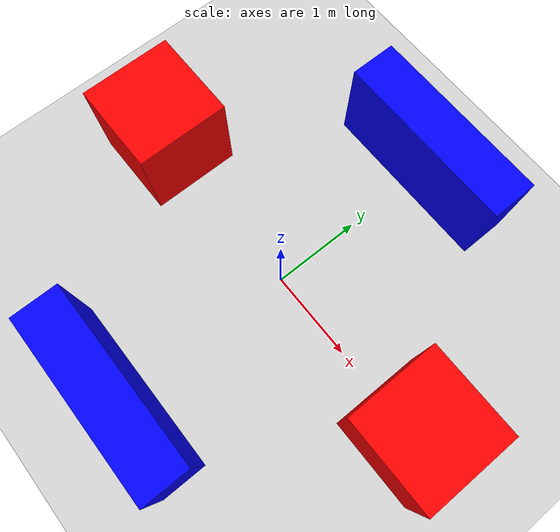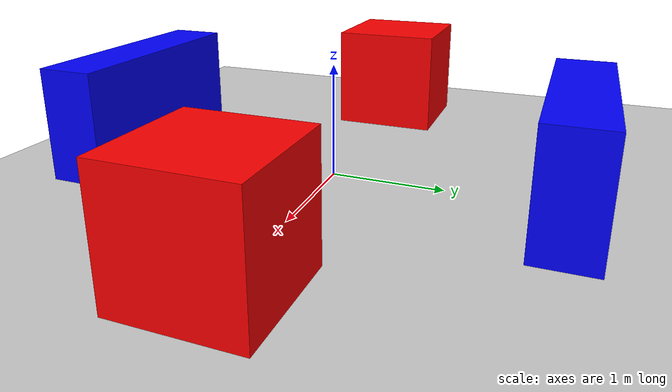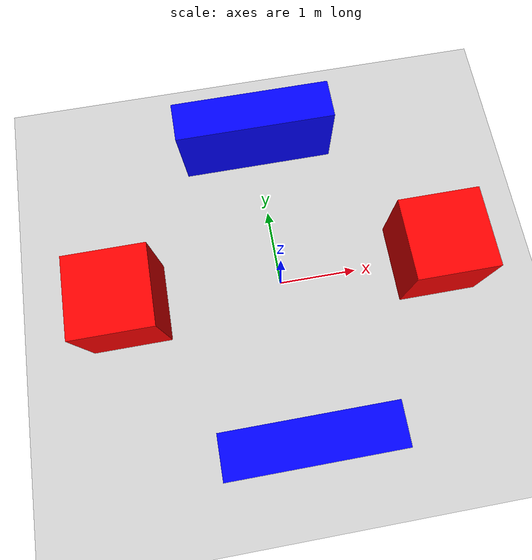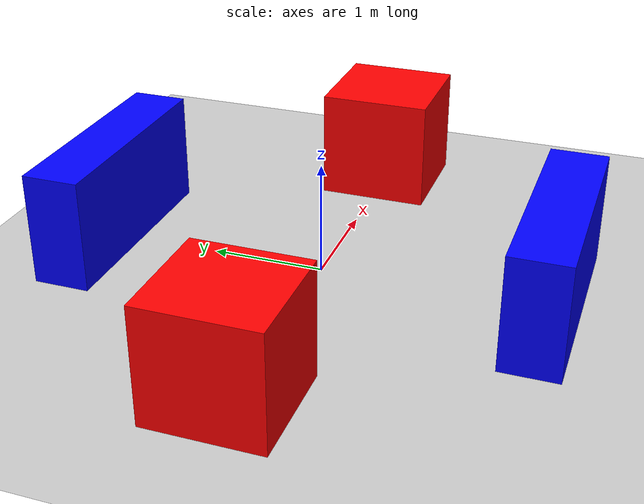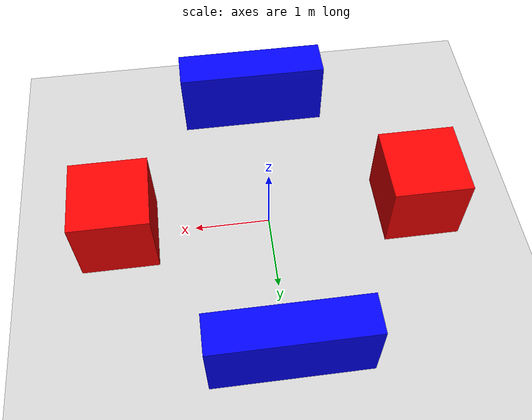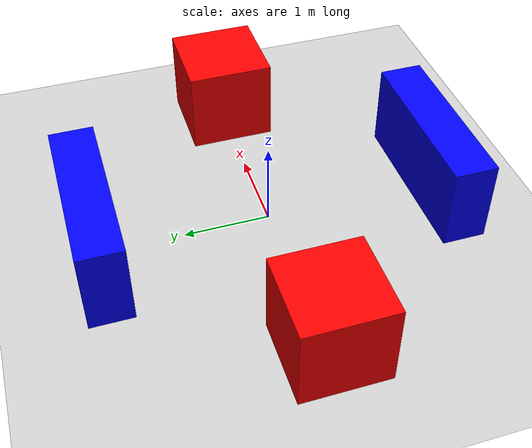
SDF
<?xml version="1.0" ?>
<sdf version="1.7">
  <world name="default">
    <!-- A global light source -->
    <include>
      <uri>model://sun</uri>
    </include>
    <!-- A ground plane -->
    <include>
      <uri>model://ground_plane</uri>
    </include>

    <!-- First test box -->
    <model name="test_box_1">
      <pose>2 0 0.5 0 0 0</pose> <!-- x y z roll pitch yaw -->
      <link name="link">
        <inertial>
          <mass>1.0</mass>
        </inertial>
        <collision name="collision">
          <geometry>
            <box>
              <size>1 1 1</size>
            </box>
          </geometry>
        </collision>
        <visual name="visual">
          <geometry>
            <box>
              <size>1 1 1</size>
            </box>
          </geometry>
          <material>
            <ambient>1 0 0 1</ambient>
            <diffuse>1 0 0 1</diffuse>
          </material>
        </visual>
      </link>
    </model>

    <!-- Second test box -->
    <model name="test_box_2">
      <pose>0 2 0.5 0 0 0</pose>
      <link name="link">
        <inertial>
          <mass>1.0</mass>
        </inertial>
        <collision name="collision">
          <geometry>
            <box>
              <size>2 0.5 1</size>
            </box>
          </geometry>
        </collision>
        <visual name="visual">
          <geometry>
            <box>
              <size>2 0.5 1</size>
            </box>
          </geometry>
          <material>
            <ambient>0 0 1 1</ambient>
            <diffuse>0 0 1 1</diffuse>
          </material>
        </visual>
      </link>
    </model>

    <model name="test_box_3">
      <pose>0 -2 0.5 0 0 0</pose>
      <link name="link">
        <inertial>
          <mass>1.0</mass>
        </inertial>
        <collision name="collision">
          <geometry>
            <box>
              <size>2 0.5 1</size>
            </box>
          </geometry>
        </collision>
        <visual name="visual">
          <geometry>
            <box>
              <size>2 0.5 1</size>
            </box>
          </geometry>
          <material>
            <ambient>0 0 1 1</ambient>
            <diffuse>0 0 1 1</diffuse>
          </material>
        </visual>
      </link>
    </model>

    <!-- Last test box -->
    <model name="test_box_4">
      <pose>-2 0 0.5 0 0 0</pose> <!-- x y z roll pitch yaw -->
      <link name="link">
        <inertial>
          <mass>1.0</mass>
        </inertial>
        <collision name="collision">
          <geometry>
            <box>
              <size>1 1 1</size>
            </box>
          </geometry>
        </collision>
        <visual name="visual">
          <geometry>
            <box>
              <size>1 1 1</size>
            </box>
          </geometry>
          <material>
            <ambient>1 0 0 1</ambient>
            <diffuse>1 0 0 1</diffuse>
          </material>
        </visual>
      </link>
    </model>
  </world>
</sdf>
